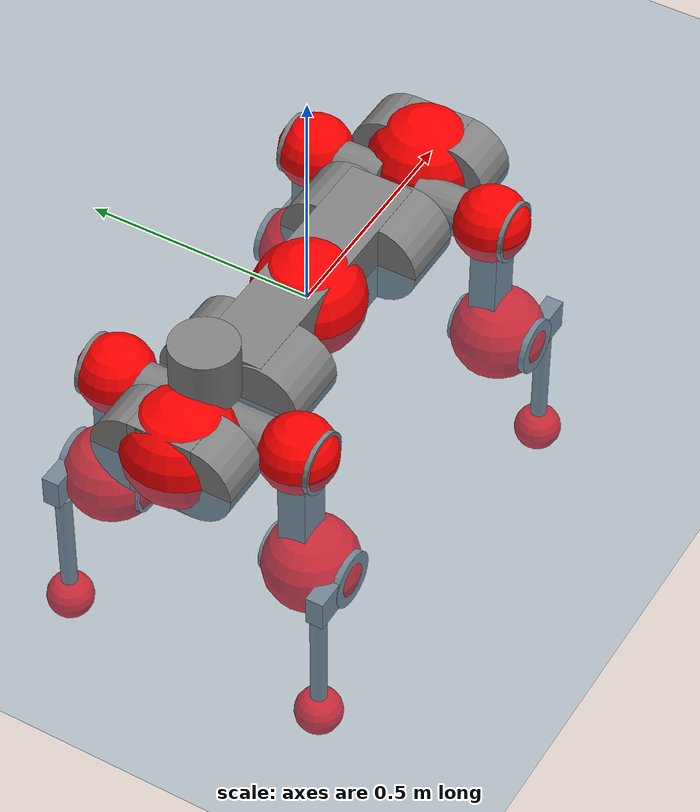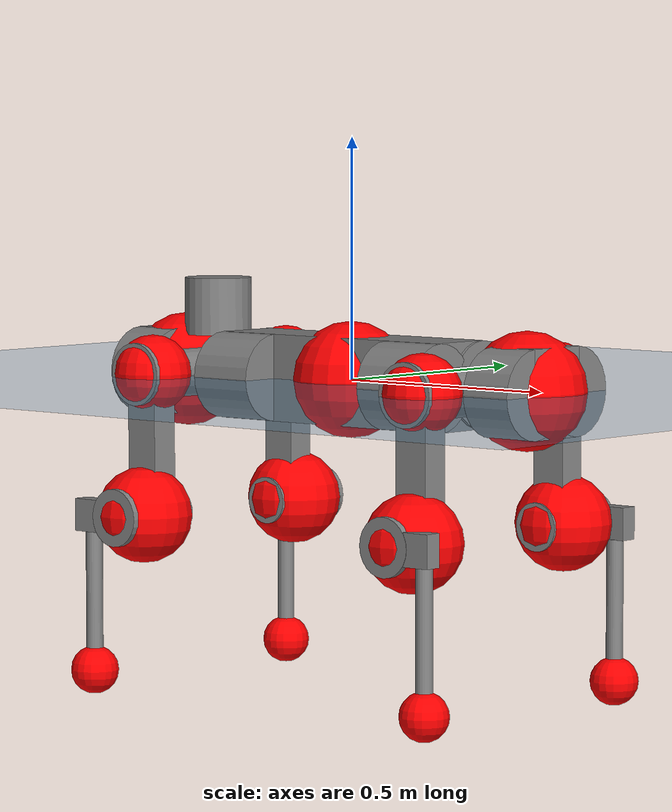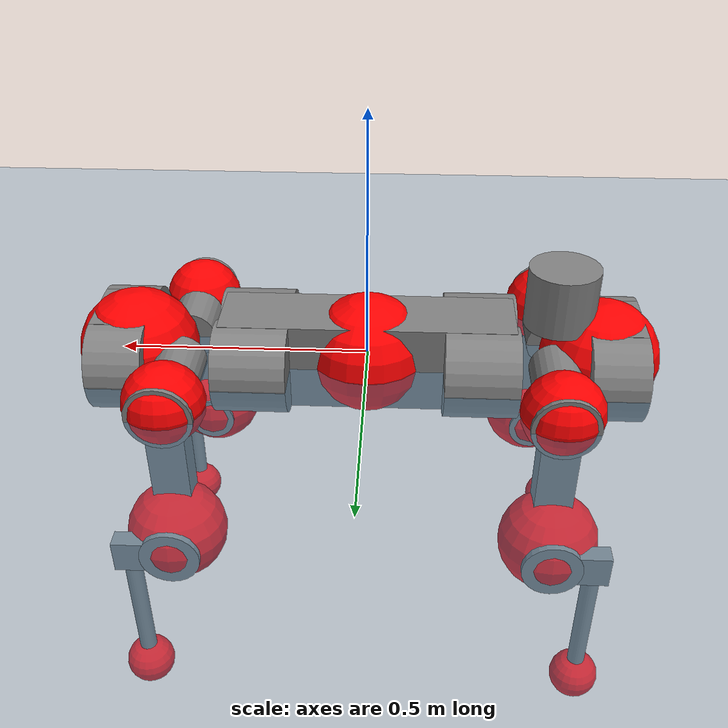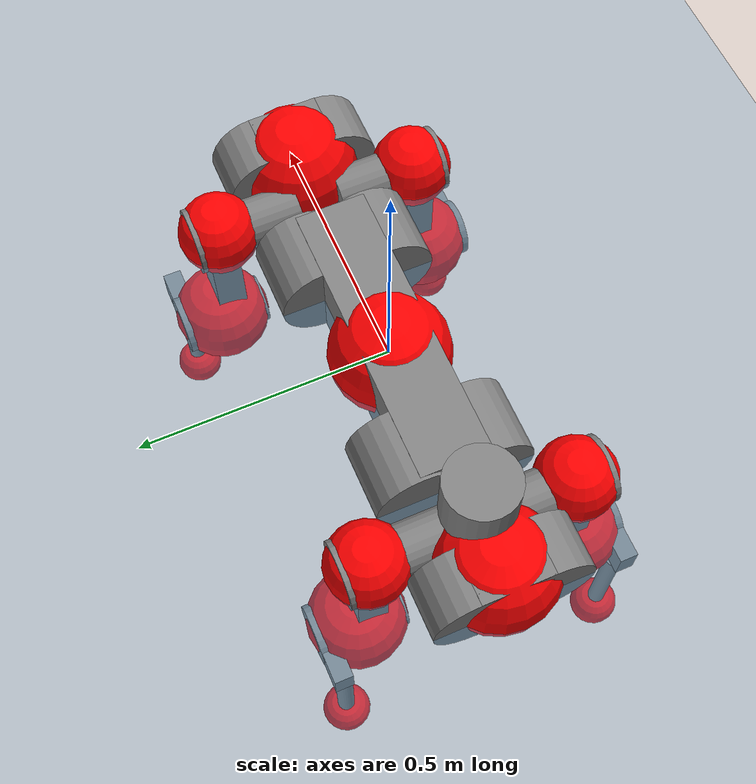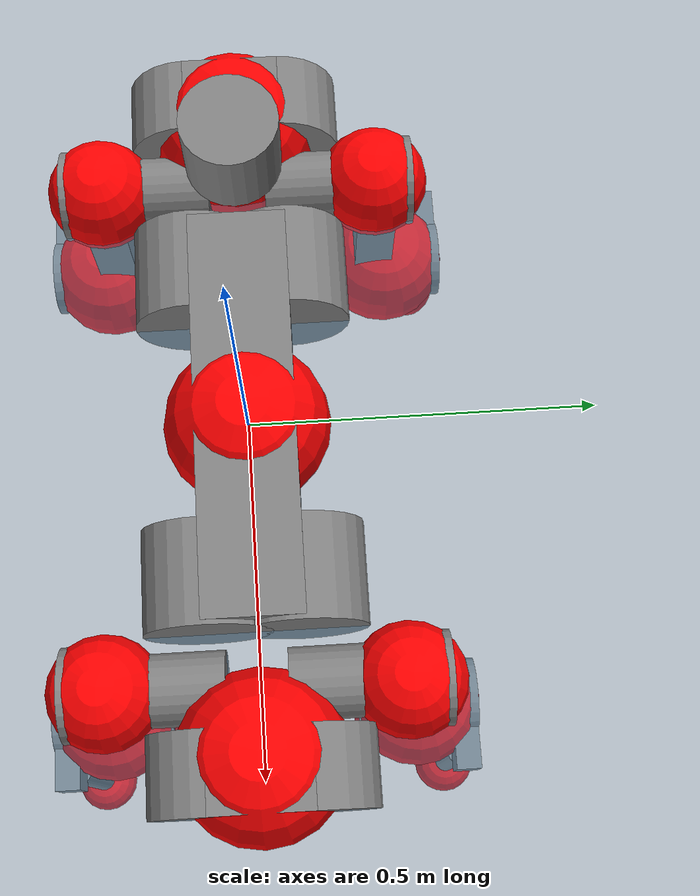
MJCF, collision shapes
<mujoco model="anymal_c">
  <compiler angle="radian" assetdir="assets" balanceinertia="true" inertiafromgeom="false"/>

  <option timestep="0.005" density="1.2" viscosity="2e-05"/>

  <size nkey="1"/>

  <visual>
    <quality shadowsize="8192"/>
    <map shadowclip="0.5"/>
  </visual>

  <default>
    <default class="/">
      <material specular="0" shininess="0.25"/>
      <geom contype="0" conaffinity="0" group="1" solref="-1000 -80"/>
      <site size="0.01 0.005 0.005" group="5"/>
      <general forcelimited="true" forcerange="-80 80" biastype="affine" gainprm="80" biasprm="0 -80 -2"/>
      <default class="anymal_c">
        <joint armature="0.01" damping="0.01" frictionloss="0.1"/>
        <default class="visual">
          <geom type="mesh" group="2"/>
          <default class="visual_zflip"/>
        </default>
        <default class="collision">
          <geom type="cylinder" group="3"/>
          <default class="foot">
            <geom size="0.03 0 0" type="sphere" condim="6" priority="1" friction="0.8 0.02 0.01" solimp="0.015 1 0.03"/>
          </default>
        </default>
      </default>
      <default class="reward_collision_sphere">
        <geom group="5" rgba="1 0 0 1"/>
      </default>
    </default>
  </default>

  <asset>
    <texture type="skybox" colorspace="auto" name="//unnamed_texture_0" builtin="gradient" rgb1="0.95 0.95 0.95" rgb2="0.95 0.95 0.95" width="100" height="600"/>
    <texture type="2d" colorspace="auto" name="texplane" builtin="checker" rgb1="0.345 0.575 0.748" rgb2="0.345 0.575 0.748" markrgb="1 1 1" width="512" height="512"/>
    <texture type="2d" colorspace="linear" name="base" file="base.png"/>
    <texture type="2d" colorspace="linear" name="top_shell" file="top_shell.png"/>
    <texture type="2d" colorspace="linear" name="bottom_shell" file="bottom_shell.png"/>
    <texture type="2d" colorspace="linear" name="remote" file="remote.png"/>
    <texture type="2d" colorspace="linear" name="hatch" file="hatch.png"/>
    <texture type="2d" colorspace="linear" name="handle" file="handle.png"/>
    <texture type="2d" colorspace="linear" name="face" file="face.png"/>
    <texture type="2d" colorspace="linear" name="battery" file="battery.png"/>
    <texture type="2d" colorspace="linear" name="lidar_cage" file="lidar_cage.png"/>
    <texture type="2d" colorspace="linear" name="depth_camera" file="depth_camera.png"/>
    <texture type="2d" colorspace="linear" name="wide_angle_camera" file="wide_angle_camera.png"/>
    <texture type="2d" colorspace="linear" name="lidar" file="lidar.png"/>
    <texture type="2d" colorspace="linear" name="drive" file="drive.png"/>
    <texture type="2d" colorspace="linear" name="hip_l" file="hip_l.png"/>
    <texture type="2d" colorspace="linear" name="shank_l" file="shank_l.png"/>
    <texture type="2d" colorspace="linear" name="foot" file="foot.png"/>
    <texture type="2d" colorspace="linear" name="thigh" file="thigh.png"/>
    <texture type="2d" colorspace="linear" name="shank_r" file="shank_r.png"/>
    <texture type="2d" colorspace="linear" name="hip_r" file="hip_r.png"/>
    <material name="MatPlane" class="/" texture="texplane" texuniform="true" texrepeat="2 2" specular="0.9" shininess="0.5"/>
    <material name="black_plastic" class="/" rgba="0.007 0.007 0.007 1"/>
    <material name="green" class="/" rgba="0.052 0.178 0.033 1"/>
    <material name="red" class="/" rgba="0.178 0.006 0.005 1"/>
    <material name="yellow" class="/" rgba="0.178 0.119 0.006 1"/>
    <material name="lwl" class="/" rgba="0.8 0.8 0.8 1"/>
    <material name="base" class="/" texture="base"/>
    <material name="top_shell" class="/" texture="top_shell"/>
    <material name="bottom_shell" class="/" texture="bottom_shell"/>
    <material name="hip_l" class="/" texture="hip_l"/>
    <material name="thigh" class="/" texture="thigh"/>
    <material name="shank_l" class="/" texture="shank_l"/>
    <material name="foot" class="/" texture="foot"/>
    <material name="hip_r" class="/" texture="hip_r"/>
    <material name="shank" class="/" texture="shank_r"/>
    <material name="hatch" class="/" texture="hatch"/>
    <material name="remote" class="/" texture="remote"/>
    <material name="handle" class="/" texture="handle"/>
    <material name="face" class="/" texture="face"/>
    <material name="depth_camera" class="/" texture="depth_camera"/>
    <material name="wide_angle_camera" class="/" texture="wide_angle_camera"/>
    <material name="battery" class="/" texture="battery"/>
    <material name="lidar_cage" class="/" texture="lidar_cage"/>
    <material name="lidar" class="/" texture="lidar"/>
    <material name="drive" class="/" texture="drive"/>
    <mesh name="base_0" class="/" file="base_0.obj"/>
    <mesh name="base_1" class="/" file="base_1.obj"/>
    <mesh name="base_2" class="/" file="base_2.obj"/>
    <mesh name="base_3" class="/" file="base_3.obj"/>
    <mesh name="base_4" class="/" file="base_4.obj"/>
    <mesh name="base_5" class="/" file="base_5.obj"/>
    <mesh name="top_shell" class="/" file="top_shell.obj"/>
    <mesh name="bottom_shell" class="/" file="bottom_shell.obj"/>
    <mesh name="remote" class="/" file="remote.obj"/>
    <mesh name="handle" class="/" file="handle.obj"/>
    <mesh name="face" class="/" file="face.obj"/>
    <mesh name="wide_angle_camera" class="/" file="wide_angle_camera.obj"/>
    <mesh name="depth_camera" class="/" file="depth_camera.obj"/>
    <mesh name="battery" class="/" file="battery.obj"/>
    <mesh name="lidar_cage" class="/" file="lidar_cage.obj"/>
    <mesh name="lidar" class="/" file="lidar.obj"/>
    <mesh name="drive" class="/" file="drive.obj"/>
    <mesh name="hip_l" class="/" file="hip_l.obj"/>
    <mesh name="thigh" class="/" file="thigh.obj"/>
    <mesh name="shank_l" class="/" file="shank_l.obj"/>
    <mesh name="foot" class="/" file="foot.obj"/>
    <mesh name="hip_r" class="/" file="hip_r.obj"/>
    <mesh name="hatch" class="/" file="hatch.obj"/>
    <mesh name="shank_r" class="/" file="shank_r.obj"/>
  </asset>

  <worldbody>
    <geom name="floor" class="/" size="100 100 0.125" type="plane" group="0" material="MatPlane"/>
    <light name="toplight_shadow" class="/" pos="0 0 5" dir="0.0990148 0.0990148 -0.990148" type="directional" ambient="0.04 0.04 0.04" diffuse="0.55 0.55 0.55" specular="0.12 0.12 0.12"/>
    <light name="toplight_fill" class="/" pos="0 0 5" dir="0.0990148 0.0990148 -0.990148" type="directional" castshadow="false" ambient="0.04 0.04 0.04" diffuse="0.3 0.3 0.3" specular="0.08 0.08 0.08"/>
    <body name="trunk" childclass="anymal_c" pos="-0.000452689 -0.00211258 0.000499213" quat="0.999999 -0.00018166 -0.000797155 -0.000688142">
      <inertial pos="0.000777686 -0.00259237 0.0529001" quat="0.495397 0.49822 0.505165 0.501165" mass="19.546" diaginertia="0.725456 0.463982 0.262502"/>
      <joint name="//unnamed_joint_0" type="free" armature="0" damping="0" frictionloss="0"/>
      <geom name="//unnamed_geom_1" class="visual" material="green" mesh="base_0"/>
      <geom name="//unnamed_geom_2" class="visual" material="yellow" mesh="base_1"/>
      <geom name="//unnamed_geom_3" class="visual" material="red" mesh="base_2"/>
      <geom name="//unnamed_geom_4" class="visual" material="black_plastic" mesh="base_3"/>
      <geom name="//unnamed_geom_5" class="visual" material="lwl" mesh="base_4"/>
      <geom name="//unnamed_geom_6" class="visual" material="base" mesh="base_5"/>
      <geom name="trunk_1" class="collision" size="0.292255 0.0705444 0.0906999" type="box"/>
      <geom name="trunk_2" class="collision" size="0.0906999 0.0730638" pos="0.225868 0.0662682 0" quat="0.707107 0 0.707107 0"/>
      <geom name="trunk_3" class="collision" size="0.0906999 0.0730638" pos="-0.225868 0.0662682 0" quat="0.707107 0 0.707107 0"/>
      <geom name="trunk_4" class="collision" size="0.0906999 0.0730638" pos="0.225868 -0.0662682 0" quat="0.707107 0 0.707107 0"/>
      <geom name="trunk_5" class="collision" size="0.0906999 0.0730638" pos="-0.225868 -0.0662682 0" quat="0.707107 0 0.707107 0"/>
      <geom name="//unnamed_geom_12" class="visual" material="top_shell" mesh="top_shell"/>
      <geom name="//unnamed_geom_13" class="visual" material="bottom_shell" mesh="bottom_shell"/>
      <geom name="//unnamed_geom_14" class="visual" material="remote" mesh="remote"/>
      <geom name="//unnamed_geom_15" class="visual" material="handle" mesh="handle"/>
      <geom name="//unnamed_geom_16" class="visual" pos="0.430447 0 0" quat="1 0 0 0" material="face" mesh="face"/>
      <geom name="trunk_6" class="collision" size="0.0554277 0.0705444 0.0906999" pos="0.487563 0 0" type="box"/>
      <geom name="//unnamed_geom_18" class="collision" size="0.0906999 0.0554277" pos="0.487563 0.0662682 0" quat="0.707107 0 0.707107 0"/>
      <geom name="//unnamed_geom_19" class="collision" size="0.0906999 0.0554277" pos="0.487563 -0.0662682 0" quat="0.707107 0 0.707107 0"/>
      <geom name="//unnamed_geom_20" class="visual" pos="0.479411 0 -0.0303123" quat="0.965926 0 0.258819 0" material="depth_camera" mesh="depth_camera"/>
      <geom name="//unnamed_geom_21" class="visual" pos="0.532736 0 0.0155414" material="wide_angle_camera" mesh="wide_angle_camera"/>
      <geom name="//unnamed_geom_22" class="visual_zflip" pos="-0.430447 0 0" quat="0 0 0 1" material="face" mesh="face"/>
      <geom name="trunk_7" class="collision" size="0.0554277 0.0705444 0.0906999" pos="-0.487563 0 0" quat="0 0 0 1" type="box"/>
      <geom name="//unnamed_geom_24" class="collision" size="0.0906999 0.0554277" pos="-0.487563 -0.0662682 0" quat="0 -0.707107 0 0.707107"/>
      <geom name="//unnamed_geom_25" class="collision" size="0.0906999 0.0554277" pos="-0.487563 0.0662682 0" quat="0 -0.707107 0 0.707107"/>
      <geom name="//unnamed_geom_26" class="visual" pos="-0.479411 0 -0.0303123" quat="0 -0.258819 0 0.965926" material="depth_camera" mesh="depth_camera"/>
      <geom name="//unnamed_geom_27" class="visual_zflip" pos="-0.532736 0 0.0155414" quat="0 0 0 1" material="wide_angle_camera" mesh="wide_angle_camera"/>
      <geom name="//unnamed_geom_28" class="visual" material="battery" mesh="battery"/>
      <geom name="//unnamed_geom_29" class="visual" pos="0 0.0711794 0.0301611" quat="0.683013 -0.183013 0.183013 0.683013" material="depth_camera" mesh="depth_camera"/>
      <geom name="//unnamed_geom_30" class="visual" pos="0 -0.0711794 0.0301611" quat="0.683013 0.183013 0.183013 -0.683013" material="depth_camera" mesh="depth_camera"/>
      <geom name="//unnamed_geom_31" class="visual" pos="-0.378004 0 0.0763055" quat="1 0 0 0" material="lidar_cage" mesh="lidar_cage"/>
      <geom name="trunk_8" class="collision" size="0.0705444 0.0604666" pos="-0.378004 0 0.138596"/>
      <geom name="//unnamed_geom_33" class="visual" pos="-0.378004 -3.60593e-05 0.147628" quat="0.707107 0 0 -0.707107" material="lidar" mesh="lidar"/>
      <geom name="//unnamed_geom_34" class="visual" pos="0.311438 0.0984881 -1.57807e-09" quat="0.258819 0.965926 0 0" material="drive" mesh="drive"/>
      <geom name="//unnamed_geom_35" class="visual" pos="0.311438 -0.0984881 1.57807e-09" quat="0.258819 -0.965926 0 0" material="drive" mesh="drive"/>
      <geom name="//unnamed_geom_36" class="visual" pos="-0.311438 0.0984881 1.57807e-09" quat="0 0 0.965926 -0.258819" material="drive" mesh="drive"/>
      <geom name="//unnamed_geom_37" class="visual" pos="-0.311438 -0.0984881 -1.57807e-09" quat="0 0 -0.965926 -0.258819" material="drive" mesh="drive"/>
      <geom name="//unnamed_geom_38" class="visual" pos="0.120463 0 0.0757864" quat="1 0 0 0" material="hatch" mesh="hatch"/>
      <geom name="//unnamed_geom_39" class="reward_collision_sphere" size="0.120933"/>
      <geom name="//unnamed_geom_40" class="reward_collision_sphere" size="0.120933" pos="0.467312 0 0"/>
      <geom name="//unnamed_geom_41" class="reward_collision_sphere" size="0.120933" pos="-0.467312 0 0"/>
      <site name="imu" pos="0.260936 0.00872505 0.0489405" size="0.0100778"/>
      <camera name="track" pos="0 -1.89338 0" quat="0.707107 0.707107 0 0" mode="trackcom"/>
      <camera name="ego_camera" pos="0.467312 0 -0.0415268" quat="-0.5 -0.5 0.5 0.5"/>
      <body name="LF_HIP" pos="0.31104 0.0988951 0.000172678" quat="0.258849 0.965918 2.01678e-05 -1.61832e-05">
        <inertial pos="0.0590112 -0.0168566 -0.00871284" quat="-0.128042 0.716524 -0.12801 0.673656" mass="2.82785" diaginertia="0.0069775 0.00365532 0.00389999"/>
        <joint name="LF_HAA" pos="0 0 0" axis="0.999994 0.00325045 -0.000850431" stiffness="0.00182673" range="-0.742285 0.512573" armature="0.00981841" damping="0.0122155" frictionloss="0.099798"/>
        <geom name="//unnamed_geom_42" class="visual" pos="0 -9.2831e-05 1.52474e-05" quat="0.258819 -0.965926 0 0" material="hip_l" mesh="hip_l"/>
        <geom name="//unnamed_geom_43" class="visual" pos="0.0622045 -0.074198 -0.0435149" quat="0.183013 -0.683013 0.683013 0.183013" material="drive" mesh="drive"/>
        <geom name="//unnamed_geom_44" class="collision" size="0.0503888 0.0705444" pos="0.0622045 -0.0113222 -0.00716857" quat="-0.353553 -0.612372 0.612372 -0.353553"/>
        <body name="LF_THIGH" pos="0.0651979 -0.0680101 -0.0441557" quat="0.18369 -0.683165 0.68294 0.182036">
          <inertial pos="0.0318122 0.00257045 -0.253969" quat="0.99318 -0.00552428 -0.0813987 0.0832929" mass="3.196" diaginertia="0.0353241 0.0235113 0.00505913"/>
          <joint name="LF_HFE" pos="0 0 0" axis="0.999929 0.00548505 0.0105572" stiffness="0.00345558" range="-3.1894 3.08388" armature="0.0113405" damping="0.00276652" frictionloss="0.0935683"/>
          <geom name="//unnamed_geom_45" class="visual" pos="0.00182613 2.87756e-06 0" quat="0.707107 0 0 -0.707107" material="thigh" mesh="thigh"/>
          <geom name="//unnamed_geom_46" class="collision" size="0.0655055 0.0403111" pos="0.0415389 0 0" quat="0.5 0.5 -0.5 -0.5"/>
          <geom name="//unnamed_geom_47" class="collision" size="0.0377916 0.0302333 0.142413" pos="0.0311542 0 -0.146708" quat="0.707107 0 0 -0.707107" type="box"/>
          <geom name="//unnamed_geom_48" class="visual" pos="0.104159 0 -0.295879" quat="1 0 0 0" material="drive" mesh="drive"/>
          <geom name="//unnamed_geom_49" class="collision" size="0.0503888 0.0705444" pos="0.0314657 0 -0.295879" quat="0.707107 0 0.707107 0"/>
          <geom name="//unnamed_geom_50" class="reward_collision_sphere" size="0.0806222" pos="0.0259618 0 0"/>
          <body name="LF_SHANK" pos="0.103804 -0.000819073 -0.293821" quat="1 -4.9021e-05 -4.453e-05 0.000191001">
            <inertial pos="0.00290198 -0.0597841 -0.0864302" quat="0.992906 -0.116124 -0.000593959 -0.0255305" mass="0.586082" diaginertia="0.0120096 0.00709156 0.00132596"/>
            <joint name="LF_KFE" pos="0 0 0" axis="1 4.98759e-05 -0.000229" stiffness="0.00018215" range="-3.08989 3.19169" armature="0.00933543" damping="0" frictionloss="0.0989426"/>
            <geom name="//unnamed_geom_51" class="visual" pos="0.000595462 0.00317504 0" quat="0.707107 0 0 -0.707107" material="shank_l" mesh="shank_l"/>
            <geom name="LF_kfe_act" class="collision" size="0.0604666 0.0201555" pos="0.0207694 0 0" quat="0.5 0.5 -0.5 -0.5"/>
            <geom name="//unnamed_geom_53" class="collision" size="0.0579462 0.0340125 0.0191478" pos="0.0207694 -0.0544336 0" quat="0.5 0.5 -0.5 -0.5" type="box"/>
            <geom name="//unnamed_geom_54" class="visual" pos="0.0135519 -0.0822381 -0.35087" quat="0.382683 0 0 -0.92388" material="foot" mesh="foot"/>
            <geom name="LF_calf" class="collision" size="0.0176361 0.142351" pos="0.0135521 -0.0832612 -0.175435" quat="0.707107 0 0 -0.707107"/>
            <geom name="LF_foot" class="foot" size="0.0305188" pos="0.0135521 -0.0832612 -0.327512" quat="0.707107 0 0 -0.707107"/>
            <geom name="//unnamed_geom_57" class="reward_collision_sphere" size="0.100778" pos="-0.0519236 0 0"/>
            <geom name="//unnamed_geom_58" class="reward_collision_sphere" size="0.0503888" pos="0.0135521 -0.0832612 -0.327512"/>
            <site name="LF_foot" class="foot" pos="0.0135521 -0.0832612 -0.327512" quat="0.707107 0 0 -0.707107" size="0.0100778"/>
          </body>
        </body>
      </body>
      <body name="RF_HIP" pos="0.30926 -0.0999098 -0.00179696" quat="0.258932 -0.965896 -0.000159428 -0.000192973">
        <inertial pos="0.0598228 0.0152345 -0.00931216" quat="0.145804 0.683967 0.129842 0.702902" mass="2.8604" diaginertia="0.00691492 0.00373882 0.00398364"/>
        <joint name="RF_HAA" pos="0 0 0" axis="0.999953 0.00541589 0.00797913" range="-0.497953 0.777525" armature="0.00974029" damping="0.00739762" frictionloss="0.0972872"/>
        <geom name="//unnamed_geom_59" class="visual" pos="0 9.28303e-05 1.52474e-05" quat="0.258819 0.965926 0 0" material="hip_r" mesh="hip_r"/>
        <geom name="//unnamed_geom_60" class="visual" pos="0.0622045 0.074198 -0.0435149" quat="0.183013 0.683013 0.683013 -0.183013" material="drive" mesh="drive"/>
        <geom name="//unnamed_geom_61" class="collision" size="0.0503888 0.0705444" pos="0.0622045 0.0113222 -0.00716857" quat="-0.353553 0.612372 0.612372 0.353553"/>
        <body name="RF_THIGH" pos="0.0622756 0.0699442 -0.0458406" quat="0.182999 0.683128 0.682803 -0.183378">
          <inertial pos="0.0332231 -0.00211565 -0.252164" quat="0.992716 -0.0047206 -0.0808122 0.0892269" mass="3.12331" diaginertia="0.0356349 0.0227987 0.00506172"/>
          <joint name="RF_HFE" pos="0 0 0" axis="0.999986 0.00283577 0.00437658" stiffness="0.0127169" range="-3.15329 3.13608" armature="0.00879483" damping="0.0245282" frictionloss="0.0914905"/>
          <geom name="//unnamed_geom_62" class="visual" pos="0.00182613 2.87756e-06 0" quat="0.707107 0 0 -0.707107" material="thigh" mesh="thigh"/>
          <geom name="//unnamed_geom_63" class="collision" size="0.0655055 0.0403111" pos="0.0415389 0 0" quat="0.5 0.5 0.5 0.5"/>
          <geom name="//unnamed_geom_64" class="collision" size="0.0377916 0.0302333 0.142413" pos="0.0311542 0 -0.146708" quat="0.707107 0 0 0.707107" type="box"/>
          <geom name="//unnamed_geom_65" class="visual" pos="0.104159 0 -0.295879" quat="1 0 0 0" material="drive" mesh="drive"/>
          <geom name="//unnamed_geom_66" class="collision" size="0.0503888 0.0705444" pos="0.0314657 0 -0.295879" quat="0.707107 0 0.707107 0"/>
          <geom name="//unnamed_geom_67" class="reward_collision_sphere" size="0.0806222" pos="0.0259618 0 0"/>
          <body name="RF_SHANK" pos="0.104895 0.00100654 -0.2939" quat="1 0.000249072 -0.000359395 -0.000323542">
            <inertial pos="0.00406596 0.0600819 -0.0832198" quat="0.993163 0.113888 -0.000906963 0.0256107" mass="0.621404" diaginertia="0.0126406 0.00745527 0.00136208"/>
            <joint name="RF_KFE" pos="0 0 0" axis="0.999996 0.00262251 -0.000693485" range="-3.1311 3.12106" armature="0.0105818" damping="0" frictionloss="0.100914"/>
            <geom name="//unnamed_geom_68" class="visual" pos="0.000595459 -0.00317503 0" quat="0.707107 0 0 0.707107" material="shank" mesh="shank_r"/>
            <geom name="RF_kfe_act" class="collision" size="0.0604666 0.0201555" pos="0.0207694 0 0" quat="0.5 0.5 0.5 0.5"/>
            <geom name="//unnamed_geom_70" class="collision" size="0.0579462 0.0340125 0.0191478" pos="0.0207694 0.0544336 0" quat="0.5 0.5 0.5 0.5" type="box"/>
            <geom name="//unnamed_geom_71" class="visual" pos="0.0135522 0.0822381 -0.35087" quat="0.382683 0 0 0.92388" material="foot" mesh="foot"/>
            <geom name="RF_calf" class="collision" size="0.0176361 0.142351" pos="0.0135521 0.0832612 -0.175435" quat="0.707107 0 0 0.707107"/>
            <geom name="RF_foot" class="foot" size="0.0278177" pos="0.0135521 0.0832612 -0.327512" quat="0.707107 0 0 0.707107"/>
            <geom name="//unnamed_geom_74" class="reward_collision_sphere" size="0.100778" pos="-0.0519236 0 0"/>
            <geom name="//unnamed_geom_75" class="reward_collision_sphere" size="0.0503888" pos="0.0135521 0.0832612 -0.327512"/>
            <site name="RF_foot" class="foot" pos="0.0135521 0.0832612 -0.327512" quat="0.707107 0 0 0.707107" size="0.0100778"/>
          </body>
        </body>
      </body>
      <body name="LH_HIP" pos="-0.310846 0.100019 0.00279437" quat="9.84872e-06 -2.12308e-07 0.965927 -0.258815">
        <inertial pos="0.0579195 0.0153041 -0.00696435" quat="0.132834 0.682375 0.127994 0.707345" mass="2.75273" diaginertia="0.00715576 0.0036858 0.0040348"/>
        <joint name="LH_HAA" pos="0 0 0" axis="1 0.000828661 0.00017332" stiffness="0.00741442" range="-0.439666 0.72773" armature="0.010598" damping="0.008682" frictionloss="0.11365"/>
        <geom name="//unnamed_geom_76" class="visual" pos="0 9.28303e-05 1.52474e-05" quat="-0.258819 -0.965926 0 0" material="hip_r" mesh="hip_r"/>
        <geom name="//unnamed_geom_77" class="visual" pos="0.0622045 0.074198 -0.0435149" quat="0.183013 0.683013 0.683013 -0.183013" material="drive" mesh="drive"/>
        <geom name="//unnamed_geom_78" class="collision" size="0.0503888 0.0705444" pos="0.0622045 0.0113222 -0.00716857" quat="-0.353553 0.612372 0.612372 0.353553"/>
        <body name="LH_THIGH" pos="0.0616194 0.0684559 -0.0431213" quat="0.181837 0.682709 0.683746 -0.182577">
          <inertial pos="0.0325042 0.00228637 -0.255056" quat="0.99405 -0.0101989 -0.0720933 0.0810117" mass="3.03125" diaginertia="0.0358004 0.0230963 0.00520569"/>
          <joint name="LH_HFE" pos="0 0 0" axis="0.999923 -0.00308337 -0.0120325" stiffness="0.00349281" range="-3.12387 3.13219" armature="0.0111213" damping="0.0225139" frictionloss="0.0933853"/>
          <geom name="//unnamed_geom_79" class="visual" pos="0.00182613 2.87756e-06 0" quat="0.707107 0 0 -0.707107" material="thigh" mesh="thigh"/>
          <geom name="//unnamed_geom_80" class="collision" size="0.0655055 0.0403111" pos="0.0415389 0 0" quat="0.5 0.5 -0.5 -0.5"/>
          <geom name="//unnamed_geom_81" class="collision" size="0.0377916 0.0302333 0.142413" pos="0.0311542 0 -0.146708" quat="0.707107 0 0 -0.707107" type="box"/>
          <geom name="//unnamed_geom_82" class="visual" pos="0.104159 0 -0.295879" quat="1 0 0 0" material="drive" mesh="drive"/>
          <geom name="//unnamed_geom_83" class="collision" size="0.0503888 0.0705444" pos="0.0314657 0 -0.295879" quat="0.707107 0 0.707107 0"/>
          <geom name="//unnamed_geom_84" class="reward_collision_sphere" size="0.0806222" pos="0.0259618 0 0"/>
          <body name="LH_SHANK" pos="0.103717 0.000513009 -0.294354" quat="1 8.74298e-05 0.00016271 0.000305201">
            <inertial pos="0.00566912 0.0605606 -0.0832798" quat="0.992931 0.11591 -0.00101422 0.0255409" mass="0.598447" diaginertia="0.0117625 0.00672467 0.00128961"/>
            <joint name="LH_KFE" pos="0 0 0" axis="0.999966 -0.00357848 -0.00748827" stiffness="0.0086349" range="-3.09107 3.13602" armature="0.0113508" damping="0.0198102" frictionloss="0.0908553"/>
            <geom name="//unnamed_geom_85" class="visual" pos="0.000595459 -0.00317503 0" quat="-0.707107 0 0 -0.707107" material="shank" mesh="shank_r"/>
            <geom name="LH_kfe_act" class="collision" size="0.0604666 0.0201555" pos="0.0207694 0 0" quat="0.5 0.5 -0.5 -0.5"/>
            <geom name="//unnamed_geom_87" class="collision" size="0.0579462 0.0340125 0.0191478" pos="0.0207694 0.0544336 0" quat="0.5 0.5 -0.5 -0.5" type="box"/>
            <geom name="//unnamed_geom_88" class="visual" pos="0.0135522 0.0822381 -0.35087" quat="-0.382683 0 0 -0.92388" material="foot" mesh="foot"/>
            <geom name="LH_calf" class="collision" size="0.0176361 0.142351" pos="0.0135521 0.0832612 -0.175435" quat="0.707107 0 0 -0.707107"/>
            <geom name="LH_foot" class="foot" size="0.0300928" pos="0.0135521 0.0832612 -0.327512" quat="0.707107 0 0 -0.707107"/>
            <geom name="//unnamed_geom_91" class="reward_collision_sphere" size="0.100778" pos="-0.0519236 0 0"/>
            <geom name="//unnamed_geom_92" class="reward_collision_sphere" size="0.0503888" pos="0.0135521 0.0832612 -0.327512"/>
            <site name="LH_foot" class="foot" pos="0.0135521 0.0832612 -0.327512" quat="0.707107 0 0 -0.707107" size="0.0100778"/>
          </body>
        </body>
      </body>
      <body name="RH_HIP" pos="-0.313887 -0.098524 0.0010397" quat="-0.000664182 0.000189438 -0.966218 -0.257726">
        <inertial pos="0.0590341 -0.0140591 -0.00773528" quat="-0.128037 0.710462 -0.135924 0.67851" mass="2.80262" diaginertia="0.00697123 0.00366697 0.00402984"/>
        <joint name="RH_HAA" pos="0 0 0" axis="1 0.00061364 0.000240476" stiffness="0.00742261" range="-0.701631 0.537488" armature="0.0114612" damping="0.0137438" frictionloss="0.109878"/>
        <geom name="//unnamed_geom_93" class="visual" pos="0 -9.2831e-05 1.52474e-05" quat="-0.258819 0.965926 0 0" material="hip_l" mesh="hip_l"/>
        <geom name="//unnamed_geom_94" class="visual" pos="0.0622045 -0.074198 -0.0435149" quat="-0.183013 0.683013 -0.683013 -0.183013" material="drive" mesh="drive"/>
        <geom name="//unnamed_geom_95" class="collision" size="0.0503888 0.0705444" pos="0.0622045 -0.0113222 -0.00716857" quat="0.353553 0.612372 -0.612372 0.353553"/>
        <body name="RH_THIGH" pos="0.059886 -0.065639 -0.0434699" quat="-0.183008 0.683015 -0.683009 -0.183025">
          <inertial pos="0.0322631 -0.00256974 -0.254936" quat="0.993295 -0.0073767 -0.0828173 0.0803229" mass="3.08146" diaginertia="0.0363621 0.0226331 0.00485667"/>
          <joint name="RH_HFE" pos="0 0 0" axis="0.999994 -0.00181744 -0.00283887" stiffness="0.00945706" range="-3.14042 3.19085" armature="0.00876242" damping="0.0213168" frictionloss="0.101169"/>
          <geom name="//unnamed_geom_96" class="visual" pos="0.00182613 2.87756e-06 0" quat="0.707107 0 0 -0.707107" material="thigh" mesh="thigh"/>
          <geom name="//unnamed_geom_97" class="collision" size="0.0655055 0.0403111" pos="0.0415389 0 0" quat="0.5 0.5 0.5 0.5"/>
          <geom name="//unnamed_geom_98" class="collision" size="0.0377916 0.0302333 0.142413" pos="0.0311542 0 -0.146708" quat="0.707107 0 0 0.707107" type="box"/>
          <geom name="//unnamed_geom_99" class="visual" pos="0.104159 0 -0.295879" quat="1 0 0 0" material="drive" mesh="drive"/>
          <geom name="//unnamed_geom_100" class="collision" size="0.0503888 0.0705444" pos="0.0314657 0 -0.295879" quat="0.707107 0 0.707107 0"/>
          <geom name="//unnamed_geom_101" class="reward_collision_sphere" size="0.0806222" pos="0.0259618 0 0"/>
          <body name="RH_SHANK" pos="0.105209 -0.000142706 -0.295317" quat="1 3.85886e-05 3.48143e-05 -2.90591e-05">
            <inertial pos="0.00427675 -0.0590488 -0.0835885" quat="0.992947 -0.115788 -0.00131489 -0.0254562" mass="0.617661" diaginertia="0.0121636 0.00710448 0.0013565"/>
            <joint name="RH_KFE" pos="0 0 0" axis="0.999984 -0.00195021 -0.0053335" range="-3.07382 3.15311" armature="0.0102856" damping="0.0157055" frictionloss="0.107824"/>
            <geom name="//unnamed_geom_102" class="visual" pos="0.000595462 0.00317504 0" quat="0.707107 0 0 -0.707107" material="shank_l" mesh="shank_l"/>
            <geom name="RH_kfe_act" class="collision" size="0.0604666 0.0201555" pos="0.0207694 0 0" quat="0.5 0.5 0.5 0.5"/>
            <geom name="//unnamed_geom_104" class="collision" size="0.0579462 0.0340125 0.0191478" pos="0.0207694 -0.0544336 0" quat="0.5 0.5 0.5 0.5" type="box"/>
            <geom name="//unnamed_geom_105" class="visual" pos="0.0135519 -0.0822381 -0.35087" quat="0.382683 0 0 -0.92388" material="foot" mesh="foot"/>
            <geom name="RH_calf" class="collision" size="0.0176361 0.142351" pos="0.0135521 -0.0832612 -0.175435" quat="0.707107 0 0 0.707107"/>
            <geom name="RH_foot" class="foot" size="0.031601" pos="0.0135521 -0.0832612 -0.327512" quat="0.707107 0 0 0.707107"/>
            <geom name="//unnamed_geom_108" class="reward_collision_sphere" size="0.100778" pos="-0.0519236 0 0"/>
            <geom name="//unnamed_geom_109" class="reward_collision_sphere" size="0.0503888" pos="0.0135521 -0.0832612 -0.327512"/>
            <site name="RH_foot" class="foot" pos="0.0135521 -0.0832612 -0.327512" quat="0.707107 0 0 0.707107" size="0.0100778"/>
          </body>
        </body>
      </body>
    </body>
  </worldbody>

  <contact>
    <pair class="/" geom1="floor" geom2="LF_foot" name="//unnamed_contact_0"/>
    <pair class="/" geom1="floor" geom2="RF_foot" name="//unnamed_contact_1"/>
    <pair class="/" geom1="floor" geom2="LH_foot" name="//unnamed_contact_2"/>
    <pair class="/" geom1="floor" geom2="RH_foot" name="//unnamed_contact_3"/>
  </contact>

  <actuator>
    <general name="LF_HAA" class="/" joint="LF_HAA" forcerange="-85.0358 85.0358" gainprm="80.5953" biasprm="0 -80.5953 -2.04902"/>
    <general name="LF_HFE" class="/" joint="LF_HFE" forcerange="-80.8794 80.8794" gainprm="80.5953" biasprm="0 -80.5953 -2.04902"/>
    <general name="LF_KFE" class="/" joint="LF_KFE" forcerange="-79.7511 79.7511" gainprm="80.5953" biasprm="0 -80.5953 -2.04902"/>
    <general name="RF_HAA" class="/" joint="RF_HAA" forcerange="-78.2392 78.2392" gainprm="80.5953" biasprm="0 -80.5953 -2.04902"/>
    <general name="RF_HFE" class="/" joint="RF_HFE" forcerange="-82.6122 82.6122" gainprm="80.5953" biasprm="0 -80.5953 -2.04902"/>
    <general name="RF_KFE" class="/" joint="RF_KFE" forcerange="-73.5366 73.5366" gainprm="80.5953" biasprm="0 -80.5953 -2.04902"/>
    <general name="LH_HAA" class="/" joint="LH_HAA" forcerange="-83.2118 83.2118" gainprm="80.5953" biasprm="0 -80.5953 -2.04902"/>
    <general name="LH_HFE" class="/" joint="LH_HFE" forcerange="-81.8862 81.8862" gainprm="80.5953" biasprm="0 -80.5953 -2.04902"/>
    <general name="LH_KFE" class="/" joint="LH_KFE" forcerange="-80.5897 80.5897" gainprm="80.5953" biasprm="0 -80.5953 -2.04902"/>
    <general name="RH_HAA" class="/" joint="RH_HAA" forcerange="-79.0822 79.0822" gainprm="80.5953" biasprm="0 -80.5953 -2.04902"/>
    <general name="RH_HFE" class="/" joint="RH_HFE" forcerange="-81.3518 81.3518" gainprm="80.5953" biasprm="0 -80.5953 -2.04902"/>
    <general name="RH_KFE" class="/" joint="RH_KFE" forcerange="-89.2588 89.2588" gainprm="80.5953" biasprm="0 -80.5953 -2.04902"/>
  </actuator>

  <sensor>
    <gyro site="imu" name="imu_angular_velocity"/>
    <velocimeter site="imu" name="imu_linear_velocity"/>
    <framelinvel objtype="site" objname="LF_foot" name="LF_foot_global_linear_velocity"/>
    <framelinvel objtype="site" objname="RF_foot" name="RF_foot_global_linear_velocity"/>
    <framelinvel objtype="site" objname="LH_foot" name="LH_foot_global_linear_velocity"/>
    <framelinvel objtype="site" objname="RH_foot" name="RH_foot_global_linear_velocity"/>
  </sensor>

  <keyframe>
    <key name="home" qpos="0 0 0.55 1 0 0 0 0 0.4 -0.8 0 -0.4 0.8 0 -0.4 0.8 0 0.4 -0.8"/>
  </keyframe>
</mujoco>
